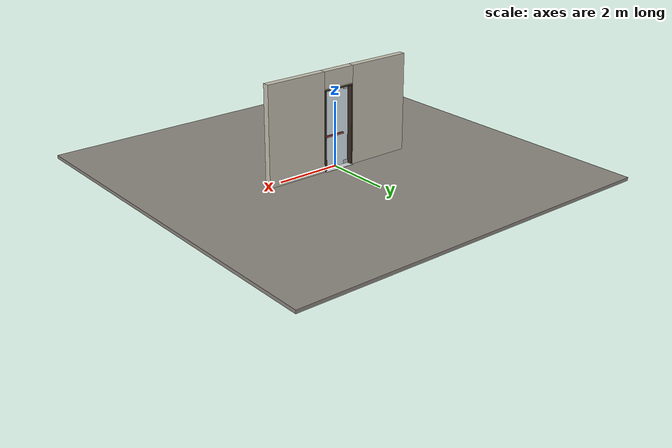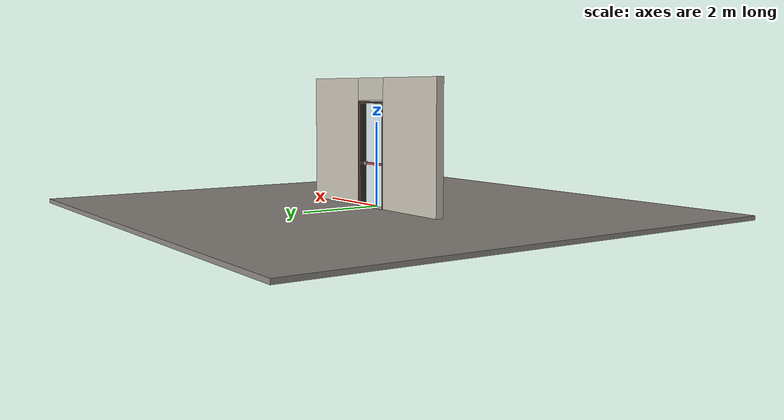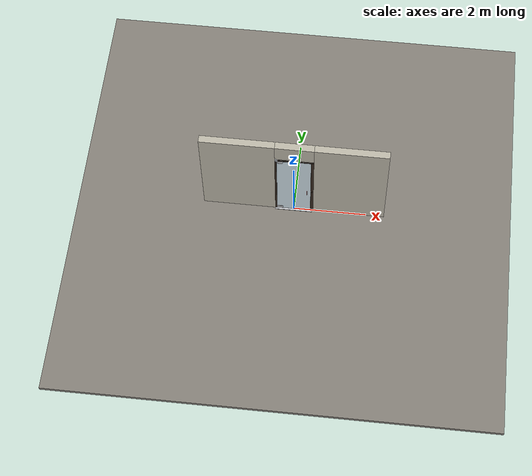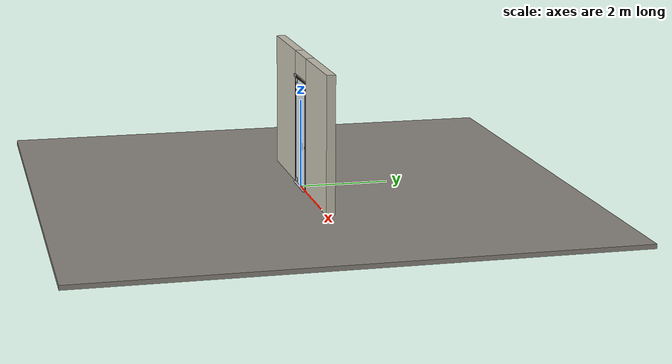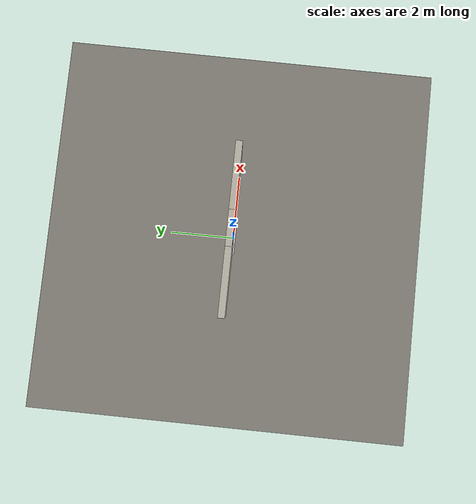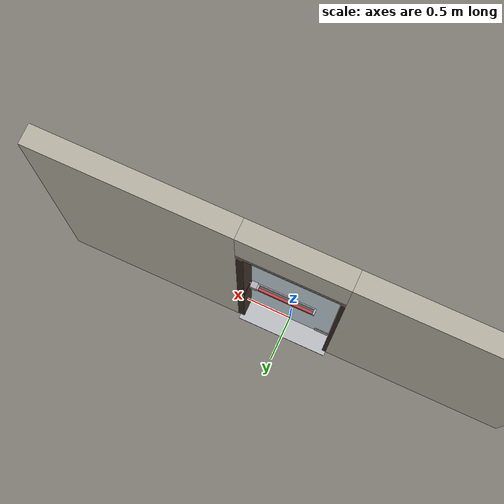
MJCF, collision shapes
<?xml version="1.0" ?>
<mujoco model="db0678_swing_single_full">
  <compiler angle="radian" meshdir="../../hardware" texturedir="../../textures" autolimits="true" inertiafromgeom="false"/>
  <option timestep="0.002" integrator="implicitfast" cone="elliptic" impratio="10" noslip_iterations="3">
    <flag multiccd="enable"/>
  </option>
  <size memory="16M"/>
  <default>
    <geom condim="4" solref="0.005 1" solimp="0.95 0.99 0.001"/>
    <joint solreflimit="0.005 1" solimplimit="0.95 0.99 0.001"/>
    <tendon solreflimit="0.005 1"/>
    <equality solref="0.002 1"/>
  </default>
  <visual>
    <headlight ambient="0.4 0.4 0.4" diffuse="0.7 0.7 0.7" specular="0.2 0.2 0.2"/>
    <quality shadowsize="4096"/>
    <map znear="0.01" zfar="60"/>
  </visual>
  <asset>
    <mesh name="pull_1e5d69a91a" file="pull_1e5d69a91a.obj"/>
    <mesh name="touchbar_pad_2729a067b4" file="touchbar_pad_2729a067b4.obj"/>
    <material name="mat_floor" rgba="0.55 0.53 0.5 1" specular="0.2" shininess="0.15" reflectance="0"/>
    <material name="mat_wall" rgba="0.78 0.76 0.7 1" specular="0.2" shininess="0.1" reflectance="0"/>
    <material name="mat_leaf" rgba="0.85 0.92 0.95 0.25" specular="0.2" shininess="0.95" reflectance="0.1"/>
    <material name="mat_glass_leaf" rgba="0.85 0.92 0.95 0.25" specular="0.2" shininess="0.95" reflectance="0.1"/>
    <material name="mat_patch" rgba="0.75 0.76 0.77 1" specular="0.8" shininess="0.65" reflectance="0.4"/>
    <material name="mat_hinge" rgba="0.65 0.66 0.68 1" specular="0.74" shininess="0.5" reflectance="0.36"/>
    <material name="mat_op_stainless" rgba="0.75 0.76 0.77 1" specular="0.8" shininess="0.65" reflectance="0.4"/>
    <material name="mat_bolt" rgba="0.75 0.76 0.77 1" specular="0.8" shininess="0.65" reflectance="0.4"/>
    <material name="mat_frame" rgba="0.22 0.17 0.13 1" specular="0.8" shininess="0.6" reflectance="0.4"/>
    <material name="mat_threshold" rgba="0.8 0.81 0.83 1" specular="0.8" shininess="0.6" reflectance="0.4"/>
    <material name="mat_closer" rgba="0.22 0.17 0.13 1" specular="0.8" shininess="0.6" reflectance="0.4"/>
    <texture name="skybox" type="skybox" builtin="gradient" rgb1="0.6 0.7 0.85" rgb2="0.9 0.92 0.95" width="256" height="256"/>
  </asset>
  <worldbody>
    <light name="sun" pos="1.5 -2.5 4" dir="-0.3 0.5 -0.8" directional="true" diffuse="0.8 0.8 0.8" specular="0.3 0.3 0.3" castshadow="true"/>
    <light name="fill" pos="-1.5 2.5 3" dir="0.3 -0.5 -0.7" directional="true" diffuse="0.35 0.35 0.4" castshadow="false"/>
    <camera name="robot_view" pos="0 -2.839313 2.043887" xyaxes="1 0 0 0 0.26963 0.962964" fovy="52"/>
    <camera name="far_view" pos="0 3.006312 2.043887" xyaxes="-1 0 0 0 -0.26963 0.962964" fovy="52"/>
    <camera name="iso" pos="2.221337 -2.371663 2.511538" xyaxes="0.741536 0.670913 0 -0.242917 0.268487 0.932151" fovy="46"/>
    <camera name="detail_handle" pos="0.5485 -0.8695 1.296" xyaxes="0.97561 0.219512 0 -0.070934 0.315262 0.94635" fovy="38"/>
    <geom name="floor" type="box" size="6 6 0.05" pos="0 0 -0.05" material="mat_floor" group="0" contype="1" conaffinity="1" friction="0.8 0.005 0.0001" density="2400"/>
    <geom name="wall_left" type="box" size="0.99675 0.1 1.5255" pos="-1.50325 0.0835 1.5255" material="mat_wall" group="0" contype="1" conaffinity="1" friction="0.6 0.005 0.0001" density="800"/>
    <geom name="wall_right" type="box" size="0.98175 0.1 1.5255" pos="1.51825 0.0835 1.5255" material="mat_wall" group="0" contype="1" conaffinity="1" friction="0.6 0.005 0.0001" density="800"/>
    <geom name="wall_header" type="box" size="0.5215 0.1 0.2625" pos="0.015 0.0835 2.7885" material="mat_wall" group="0" contype="1" conaffinity="1" friction="0.6 0.005 0.0001" density="800"/>
    <geom name="pivot_bottom_socket" type="box" size="0.035 0.035 0.0085" pos="-0.4585 -0.0165 -0.0015" material="mat_hinge" group="1" contype="0" conaffinity="0" density="7850"/>
    <geom name="pivot_top_bracket" type="box" size="0.035 0.035 0.0355" pos="-0.4585 -0.0165 2.4905" material="mat_hinge" group="1" contype="0" conaffinity="0" density="7850"/>
    <geom name="jamb_hinge" type="box" size="0.0225 0.1 1.2255" pos="-0.484 0.0835 1.2255" material="mat_frame" group="0" contype="1" conaffinity="1" friction="0.6 0.005 0.0001" density="300"/>
    <geom name="strike_1016_wall_n" type="box" size="0.0375 0.0705 0.02" pos="0.499 0.113 1.016" material="mat_frame" group="0" contype="1" conaffinity="1" friction="0.6 0.005 0.0001" density="300"/>
    <geom name="strike_1016_wall_p" type="box" size="0.0375 0.008 0.02" pos="0.499 0.0125 1.016" material="mat_frame" group="0" contype="1" conaffinity="1" friction="0.6 0.005 0.0001" density="300"/>
    <geom name="strike_1016_ramp" type="box" size="0.0375 0.022809 0.02" pos="0.505204 0.000441 1.016" quat="0.974363 0 0 0.22498" material="mat_frame" group="0" contype="1" conaffinity="1" friction="0.12 0.005 0.0001" density="300"/>
    <geom name="strike_1016_back" type="box" size="0.026 0.011 0.02" pos="0.5105 0.0315 1.016" material="mat_frame" group="0" contype="1" conaffinity="1" friction="0.6 0.005 0.0001" density="300"/>
    <geom name="jamb_strike_0" type="box" size="0.0375 0.1 0.498" pos="0.499 0.0835 0.498" material="mat_frame" group="0" contype="1" conaffinity="1" friction="0.6 0.005 0.0001" density="300"/>
    <geom name="jamb_strike_1" type="box" size="0.0375 0.1 0.7075" pos="0.499 0.0835 1.7435" material="mat_frame" group="0" contype="1" conaffinity="1" friction="0.6 0.005 0.0001" density="300"/>
    <geom name="jamb_head" type="box" size="0.5215 0.1 0.0225" pos="0.015 0.0835 2.4735" material="mat_frame" group="0" contype="1" conaffinity="1" friction="0.6 0.005 0.0001" density="300"/>
    <geom name="head_stud" type="box" size="0.5215 0.1 0.015" pos="0.015 0.0835 2.511" material="mat_wall" group="0" contype="1" conaffinity="1" friction="0.6 0.005 0.0001" density="500"/>
    <geom name="threshold" type="box" size="0.5065 0.15 0.004" pos="0 0.0835 0.004" material="mat_threshold" group="0" contype="1" conaffinity="1" friction="0.6 0.005 0.0001" density="2700"/>
    <geom name="closer_concealed_slot" type="box" size="0.25 0.008 0.004" pos="-0.1615 -0.0195 2.456" material="mat_closer" group="1" contype="0" conaffinity="0" density="2700"/>
    <site name="approach_point" pos="0 -1.5 0" quat="1 0 0 0" size="0.05" rgba="0.2 0.9 0.2 0.5" group="4"/>
    <site name="goal_point" pos="0 1.5 0" quat="1 0 0 0" size="0.05" rgba="0.2 0.9 0.2 0.5" group="4"/>
    <site name="door_plane_center" pos="0 0 1.2255" quat="1 0 0 0" size="0.02" rgba="0.2 0.9 0.2 0.5" group="4"/>
    <body name="leaf" pos="-0.4615 0 0">
      <inertial pos="0.540418 0.00613 1.151608" mass="71.783314" quat="-0.4923 0.485478 0.513048 0.508658" diaginertia="5.586990801 24.256375165 29.756794878"/>
      <joint name="leaf_hinge" type="hinge" axis="0 0 -1" pos="0.003 -0.0165 0" limited="true" range="0 1.570796" solreflimit="0.02 1" damping="10.307281" frictionloss="1.881788" stiffness="16.004621" springref="-1.722003" armature="0.02"/>
      <geom name="leaf_glass" type="box" size="0.457 0.0095 1.219" pos="0.463 0 1.228" material="mat_glass_leaf" group="0" contype="1" conaffinity="1" friction="0.4 0.005 0.0001" density="1"/>
      <geom name="leaf_patch_bot" type="box" size="0.08 0.0175 0.05" pos="0.086 0 0.069" material="mat_patch" group="1" contype="0" conaffinity="0" density="1"/>
      <geom name="leaf_patch_top" type="box" size="0.08 0.0175 0.05" pos="0.086 0 2.387" material="mat_patch" group="1" contype="0" conaffinity="0" density="1"/>
      <geom name="pivot_bottom" type="cylinder" size="0.014 0.004" pos="0.003 -0.0165 0.004" material="mat_hinge" group="1" contype="0" conaffinity="0" density="7850"/>
      <geom name="pivot_top" type="cylinder" size="0.014 0.004" pos="0.003 -0.0165 2.451" material="mat_hinge" group="1" contype="0" conaffinity="0" density="7850"/>
      <geom name="leaf_exit_device_rail" type="box" size="0.31705 0.006 0.025" pos="0.52295 0.0155 1.016" material="mat_op_stainless" group="0" contype="1" conaffinity="1" friction="0.6 0.005 0.0001" density="3000"/>
      <geom name="leaf_exit_device_rail_end_n" type="box" size="0.01 0.0325 0.025" pos="0.2159 0.042 1.016" material="mat_op_stainless" group="0" contype="1" conaffinity="1" friction="0.6 0.005 0.0001" density="3000"/>
      <geom name="leaf_exit_device_rail_end_p" type="box" size="0.01 0.0325 0.025" pos="0.83 0.042 1.016" material="mat_op_stainless" group="0" contype="1" conaffinity="1" friction="0.6 0.005 0.0001" density="3000"/>
      <geom name="leaf_exit_device_case" type="box" size="0.034 0.034125 0.0375" pos="0.874 0.043625 1.016" material="mat_op_stainless" group="0" contype="1" conaffinity="1" friction="0.6 0.005 0.0001" density="3000"/>
      <geom name="leaf_far_pull_n" type="mesh" mesh="pull_1e5d69a91a" pos="0.83 -0.0095 1.016" quat="0.707107 0.707107 0 0" material="mat_op_stainless" group="1" contype="0" conaffinity="0" density="3000"/>
      <geom name="leaf_far_pull_col_n" type="capsule" size="0.0095 0.08" pos="0.83 -0.0695 1.016" material="mat_op_stainless" group="3" contype="1" conaffinity="1" rgba="0.8 0.3 0.3 0.25" friction="0.7 0.01 0.0001" density="3000"/>
      <site name="leaf_far_pull_grip_n" pos="0.83 -0.0695 1.016" quat="1 0 0 0" size="0.012" rgba="0.2 0.9 0.2 0.5" group="4"/>
      <site name="leaf_edge_mid" pos="0.92 0 1.219" quat="1 0 0 0" size="0.02" rgba="0.2 0.9 0.2 0.5" group="4"/>
      <body name="leaf_exit_device" pos="0.52295 0.0095 1.016">
        <inertial pos="0 0.05 0" mass="4.76361" quat="0 0 0.707107 0.707107" diaginertia="0.00116113 0.137653089 0.138099678"/>
        <joint name="leaf_exit_device_slide" type="slide" axis="0 -1 0" limited="true" range="0 0.016" damping="153.575154" frictionloss="0.5" stiffness="1200" springref="-0.015" armature="0.15"/>
        <geom name="leaf_exit_device_pad" type="mesh" mesh="touchbar_pad_2729a067b4" pos="0 0 0" quat="-0.707107 0.707107 0 0" material="mat_op_stainless" group="1" contype="0" conaffinity="0" density="3000"/>
        <geom name="leaf_exit_device_pad_col" type="box" size="0.29405 0.015 0.0225" pos="0 0.05 0" material="mat_op_stainless" group="3" contype="1" conaffinity="1" rgba="0.8 0.3 0.3 0.25" friction="0.8 0.01 0.0001" density="3000"/>
        <site name="leaf_exit_device_push" pos="0 0.065 0" quat="1 0 0 0" size="0.015" rgba="0.2 0.9 0.2 0.5" group="4"/>
      </body>
      <body name="leaf_latch_bolt" pos="0.92 0.0315 1.016">
        <inertial pos="-0.0055 0 0" mass="0.102826" quat="0.92388 -0.382683 0 0" diaginertia="0.000004365 0.000018287 0.000018287"/>
        <joint name="leaf_latch_bolt_slide" type="slide" axis="-1 0 0" limited="true" range="0 0.019" damping="2" frictionloss="0.3" stiffness="800" springref="-0.01" armature="0.1"/>
        <geom name="leaf_latch_bolt_capsule" type="capsule" size="0.0095 0.015" pos="-0.0055 0 0" quat="0.707107 0 0.707107 0" material="mat_bolt" group="0" contype="1" conaffinity="1" friction="0.2 0.005 0.0001" density="8500"/>
      </body>
    </body>
  </worldbody>
  <tendon>
    <fixed name="leaf_latch_bolt_coupling" limited="true" range="0 10">
      <joint joint="leaf_latch_bolt_slide" coef="1"/>
      <joint joint="leaf_exit_device_slide" coef="-1.357143"/>
    </fixed>
  </tendon>
  <sensor>
    <jointpos name="leaf_hinge_pos" joint="leaf_hinge"/>
    <jointvel name="leaf_hinge_vel" joint="leaf_hinge"/>
    <jointpos name="leaf_exit_device_slide_pos" joint="leaf_exit_device_slide"/>
    <jointvel name="leaf_exit_device_slide_vel" joint="leaf_exit_device_slide"/>
    <jointpos name="leaf_latch_bolt_slide_pos" joint="leaf_latch_bolt_slide"/>
    <jointvel name="leaf_latch_bolt_slide_vel" joint="leaf_latch_bolt_slide"/>
  </sensor>
</mujoco>
